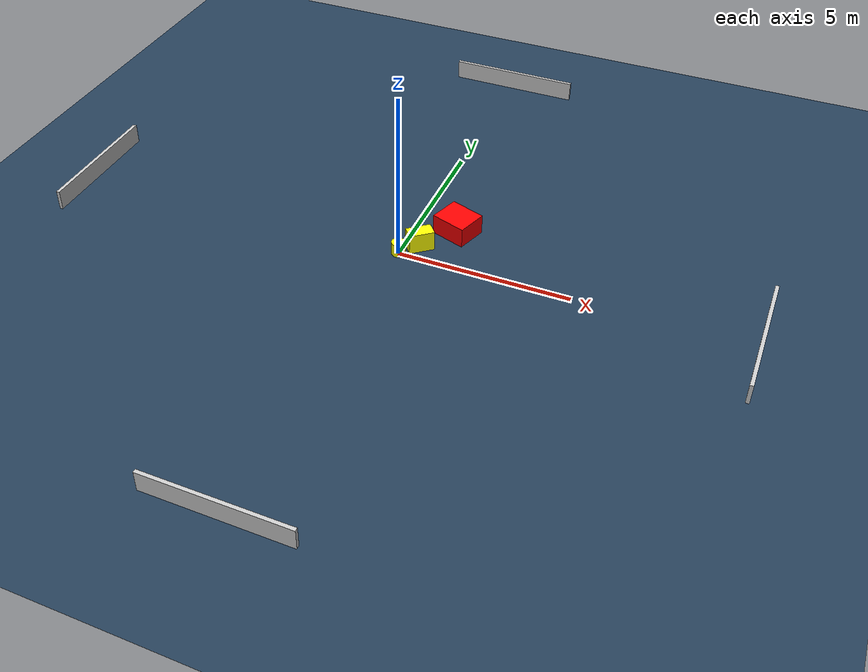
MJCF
<?xml version="1.0" ?>
<mujoco model="generated_environment">
  <option timestep="0.01" integrator="RK4" cone="elliptic"/>
  <default>
    <geom density="1"/>
  </default>
  <asset>
    <texture builtin="gradient" height="3072" name="skybox" rgb1="0.3 0.5 0.7" rgb2="0 0 0" type="skybox" width="512"/>
    <texture builtin="checker" height="300" name="groundplane" rgb1="0.2 0.3 0.4" rgb2="0.1 0.2 0.3" type="2d" width="300"/>
    <material name="groundplane" reflectance="0.2" texrepeat="5 5" texture="groundplane"/>
  </asset>
  <worldbody>
    <light dir="0 0 -1" directional="true" pos="0 0 1.5"/>
    <geom condim="3" friction="0.5 0.005 0.001" material="groundplane" name="floor" pos="0 0 0" size="0 0 0.05" type="plane"/>
    <body name="walls">
      <geom name="wall_1" condim="4" pos="-10.0 0.0 0.3" rgba="0.800000011920929 0.800000011920929 0.800000011920929 1.0" size="0.05 2.0 0.3" type="box"/>
      <geom name="wall_2" condim="4" pos="10.0 0.0 0.3" rgba="0.800000011920929 0.800000011920929 0.800000011920929 1.0" size="0.05 2.0 0.3" type="box"/>
      <geom name="wall_3" condim="4" pos="0.0 -10.0 0.3" rgba="0.800000011920929 0.800000011920929 0.800000011920929 1.0" size="2.0 0.05 0.3" type="box"/>
      <geom name="wall_4" condim="4" pos="0.0 10.0 0.3" rgba="0.800000011920929 0.800000011920929 0.800000011920929 1.0" size="2.0 0.05 0.3" type="box"/>
    </body>
    <body name="robot">
      <joint name="joint_x" type="slide" pos="0 0 0" axis="1 0 0"/>
      <joint name="joint_y" type="slide" pos="0 0 0" axis="0 1 0"/>
      <geom name="robot" type="cylinder" pos="0.0 0.0 0.2" size="0.2 0.2 0.0" mass="5.0" friction="1.0 0.005 0.0001" condim="4" rgba="1.0 1.0 0.0 1.0"/>
    </body>
    <body name="obstacle_1_movable">
      <geom name="obstacle_1_movable" condim="4" pos="0.44687449314637406 0.4827540752119558 0.3" euler="0 0 129.60439270601321" friction="0.0 0.005 0.001" rgba="1.0 1.0 0.0 1.0" size="0.20173563792787144 0.36799211371916585 0.3" type="box" mass="0.1"/>
      <joint type="free"/>
    </body>
    <body name="obstacle_2_static">
      <geom name="obstacle_2_static" condim="4" pos="1.173540901051439 1.5559913237635028 0.3" euler="0 0 71.43045519522848" friction="0.0 0.005 0.001" rgba="1.0 0.0 0.0 1.0" size="0.45555310804908233 0.525326338932192 0.3" type="box"/>
    </body>
  </worldbody>
  <actuator>
    <motor name="actuator_x" joint="joint_x" gear="1" ctrlrange="-1 1"/>
    <motor name="actuator_y" joint="joint_y" gear="1" ctrlrange="-1 1"/>
  </actuator>
</mujoco>
